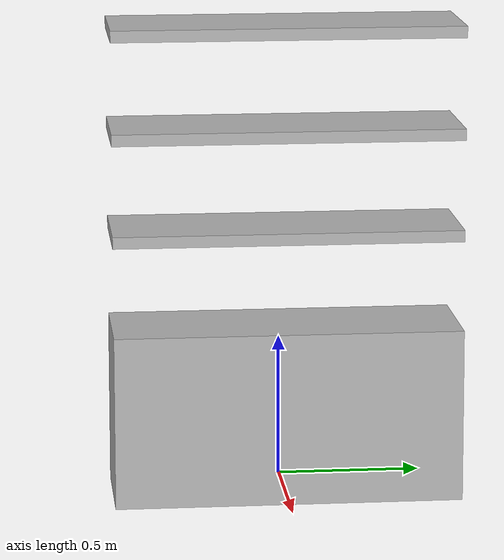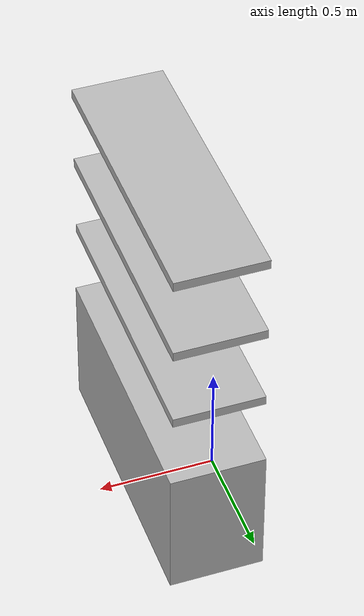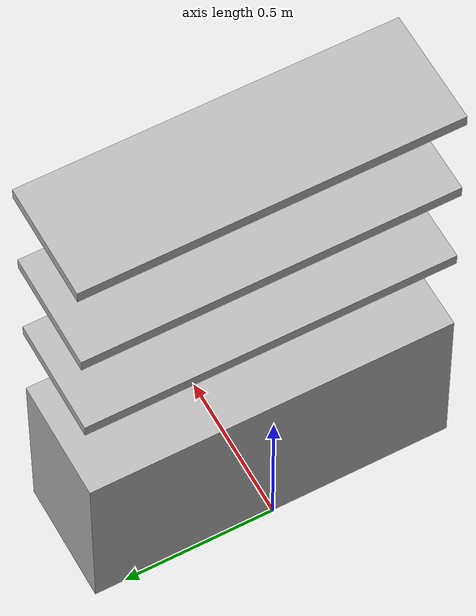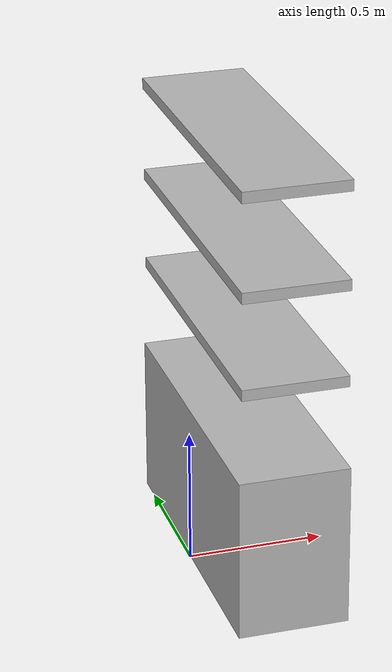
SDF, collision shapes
<sdf version='1.7'>
  <model name='bookshelft'>
    <link name='base_link'>
      <inertial>
        <pose>0 0 0.945 0 -0 0</pose>
        <mass>4</mass>
        <inertia>
          <ixx>8.45722</ixx>
          <ixy>0</ixy>
          <ixz>0</ixz>
          <iyy>8.45722</iyy>
          <iyz>0</iyz>
          <izz>0.84304</izz>
        </inertia>
      </inertial>
      <collision name='base_link_fixed_joint_lump__body_link_collision'>
        <pose>0.2 0 0.3 0 -0 0</pose>
        <geometry>
          <box>
            <size>0.4 1.2 0.6</size>
          </box>
        </geometry>
      </collision>
      <collision name='base_link_fixed_joint_lump__level_1_link_collision_1'>
        <pose>0.2 0 0.93 0 -0 0</pose>
        <geometry>
          <box>
            <size>0.38 1.2 0.04</size>
          </box>
        </geometry>
      </collision>
      <collision name='base_link_fixed_joint_lump__level_2_link_collision_2'>
        <pose>0.2 0 1.28 0 -0 0</pose>
        <geometry>
          <box>
            <size>0.38 1.2 0.04</size>
          </box>
        </geometry>
      </collision>
      <collision name='base_link_fixed_joint_lump__level_3_link_collision_3'>
        <pose>0.2 0 1.63 0 -0 0</pose>
        <geometry>
          <box>
            <size>0.38 1.2 0.04</size>
          </box>
        </geometry>
      </collision>
      <visual name='base_link_visual'>
        <pose>0 0 0 0 -0 0</pose>
        <geometry>
          <box>
            <size>0.01 0.01 0.001</size>
          </box>
        </geometry>
      </visual>
      <visual name='base_link_fixed_joint_lump__body_link_visual_1'>
        <pose>0 0 0 0 0.003 0</pose>
        <geometry>
          <mesh>
            <scale>1 1 1</scale>
            <uri>model://bookshelf/bookshelft.dae</uri>
          </mesh>
        </geometry>
      </visual>
      <visual name='base_link_fixed_joint_lump__level_1_link_visual_2'>
        <pose>0 0 0.91 0 -0 0</pose>
        <geometry>
          <box>
            <size>0.01 0.01 0.001</size>
          </box>
        </geometry>
      </visual>
      <visual name='base_link_fixed_joint_lump__level_2_link_visual_3'>
        <pose>0 0 1.26 0 -0 0</pose>
        <geometry>
          <box>
            <size>0.01 0.01 0.001</size>
          </box>
        </geometry>
      </visual>
      <visual name='base_link_fixed_joint_lump__level_3_link_visual_4'>
        <pose>0 0 1.61 0 -0 0</pose>
        <geometry>
          <box>
            <size>0.01 0.01 0.001</size>
          </box>
        </geometry>
      </visual>
    </link>
    <static>1</static>
    <frame name='2_to_3' attached_to='level_2_link'>
      <pose>0 0 0.35 0 -0 0</pose>
    </frame>
    <frame name='level_3_link' attached_to='2_to_3'/>
    <frame name='1_to_2' attached_to='level_1_link'>
      <pose>0 0 0.35 0 -0 0</pose>
    </frame>
    <frame name='level_2_link' attached_to='1_to_2'/>
    <frame name='body_to_1' attached_to='body_link'>
      <pose>0 0 0.91 0 -0 0</pose>
    </frame>
    <frame name='level_1_link' attached_to='body_to_1'/>
    <frame name='base_to_body' attached_to='base_link'>
      <pose>0 0 0 0 -0 0</pose>
    </frame>
    <frame name='body_link' attached_to='base_to_body'/>
  </model>
</sdf>
